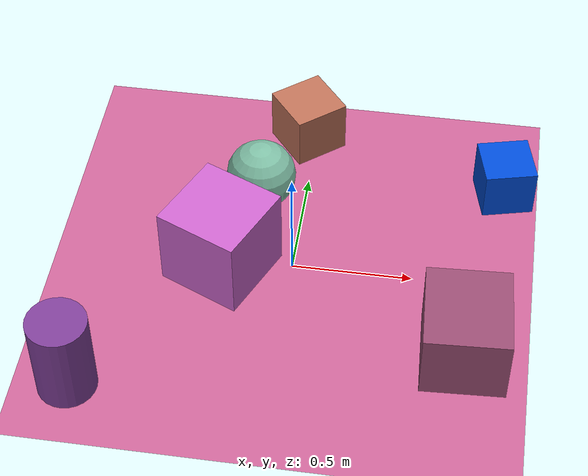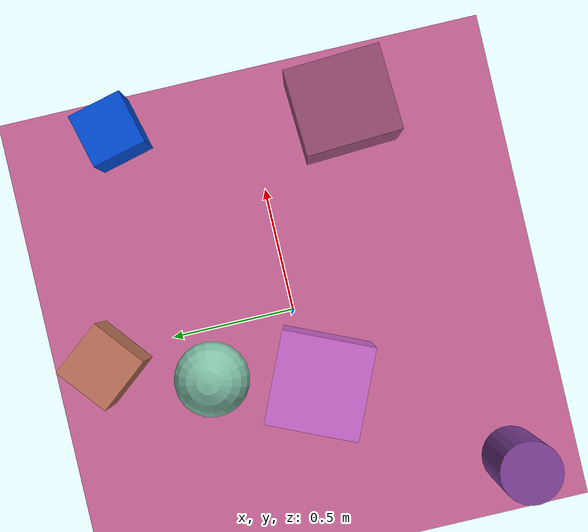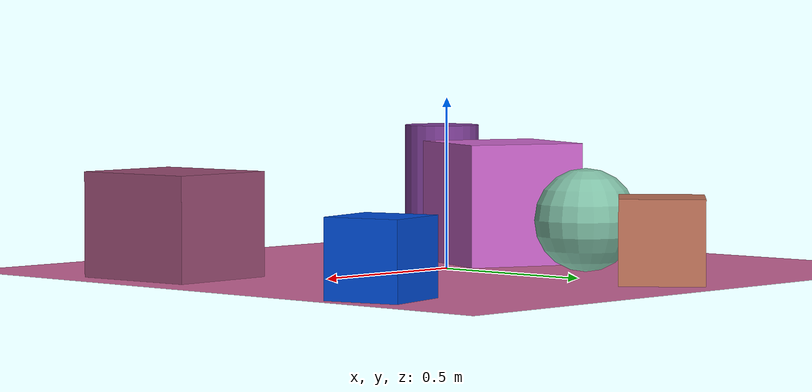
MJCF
<mujoco>
   <asset>
<texture type="skybox" builtin="gradient" rgb1="0.7 0.6 0.2" rgb2="0.9 0.8 0.1" width="256" height="256"/>
<texture name="checker_0" builtin="checker" rgb1="0.1 0.4 0.9" rgb2="0.9 0.1 0.3" width="200" height="200"/>
<texture name="checker_1" builtin="checker" rgb1="1.0 0.7 0.3" rgb2="0.5 0.2 0.4" width="200" height="200"/>
<texture name="gradient_2" builtin="gradient" rgb1="0.9 0.3 0.4" rgb2="0.3 0.3 0.5" width="200" height="200"/>
<texture name="checker_3" builtin="checker" rgb1="0.7 0.7 0.7" rgb2="0.3 0.8 0.6" width="200" height="200"/>
<texture name="gradient_4" builtin="gradient" rgb1="0.0 0.1 0.8" rgb2="0.0 0.5 0.9" width="200" height="200"/>
<texture name="checker_5" builtin="checker" rgb1="0.8 0.2 0.7" rgb2="0.8 0.6 0.9" width="200" height="200"/><material name="checker_0_mat" reflectance="0" texrepeat="5 5" texture="checker_0" texuniform="false" />
<material name="checker_1_mat" reflectance="0" texrepeat="5 5" texture="checker_1" texuniform="false" />
<material name="gradient_2_mat" reflectance="0" texture="gradient_2" texuniform="true"/>
<material name="checker_3_mat" reflectance="0" texrepeat="7 7" texture="checker_3" texuniform="false" />
<material name="gradient_4_mat" reflectance="0" texture="gradient_4" texuniform="true"/>
<material name="checker_5_mat" reflectance="0" texrepeat="7 7" texture="checker_5" texuniform="false" />
   </asset>

   <worldbody>
      <light diffuse=".9 .9 .9" pos="0 0 3" dir="0 0 -1"/>
     <geom type="plane" size="1 1 0.1" rgba="0.8 0.4 0.6 1"/>
<geom type="cylinder" pos="-0.78 -0.73 0.19" size="0.12 0.19 0.19" material="checker_0_mat" euler="0 0 17" />
<geom type="box" pos="-0.04 0.77 0.12" size="0.12 0.12 0.12" material="checker_1_mat" euler="0 0 39" />
<geom type="box" pos="0.74 -0.37 0.15" size="0.17 0.19 0.15" material="gradient_2_mat" euler="0 0 3" />
<geom type="sphere" pos="-0.19 0.37 0.15" size="0.15 0.15 0.15" material="checker_3_mat" euler="0 0 49" />
<geom type="box" pos="0.85 0.54 0.11" size="0.11 0.11 0.11" material="gradient_4_mat" euler="0 0 14" />
<geom type="box" pos="-0.29 -0.04 0.18" size="0.18 0.18 0.18" material="checker_5_mat" euler="0 0 66" /><camera euler="60 0 180" fovy="60" name="camera1" pos="-0.2 -1.5 1"></camera>   </worldbody>
</mujoco>
